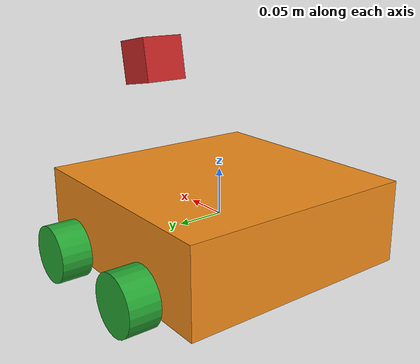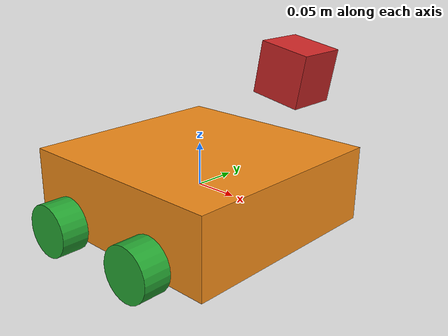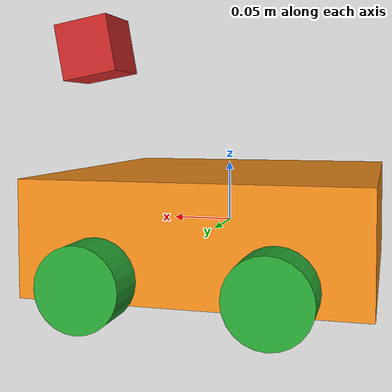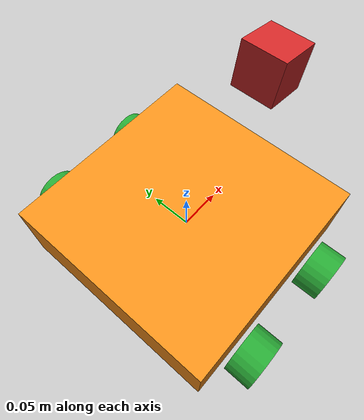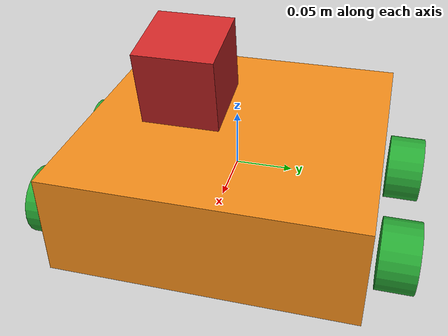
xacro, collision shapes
<?xml version='1.0'?>

<robot name="mogi_bot" xmlns:xacro="http://www.ros.org/wiki/xacro">

  <!-- STEP 3 - Gazebo plugin -->
  <xacro:include filename="$(find robotrsz_project)/urdf/mecanum_robot.gazebo" />

  <!-- STEP 4 - RViz colors -->
  <xacro:include filename="$(find robotrsz_project)/urdf/materials.xacro" />

  <!-- Include wheel macros -->
  <xacro:include filename="$(find robotrsz_project)/urdf/wheel.xacro" />

  <!-- Pi -->
  <xacro:property name="M_PI" value="3.14159"/>

  <!-- Base Size -->
  <xacro:property name="base_x_size" value="0.256" />
  <xacro:property name="base_y_size" value="0.256" />
  <xacro:property name="base_z_size" value="0.088" />

  <!-- Wheel Mounting Positions -->
  <xacro:property name="wheelbase" value="0.128" />
  <xacro:property name="track" value="0.3" />
  <xacro:property name="wheel_vertical_offset" value="-0.025" />

  <!-- Wheel Properties -->
  <xacro:property name="wheel_length" value="0.0315" />
  <xacro:property name="wheel_radius" value="0.03" />

  <!-- STEP 1 - Robot chassis -->
  <link name="base_footprint"></link>

  <joint name="base_footprint_joint" type="fixed">
    <origin xyz="0 0 0" rpy="0 0 0" />
    <parent link="base_footprint"/>
    <child link="base_link" />
  </joint>

  <!-- Robot chassis -->
  <link name='base_link'>
    <pose>0 0 0.1 0 0 0</pose>

    <inertial>
      <mass value="15.0"/>
      <origin xyz="0.0 0 0" rpy="0 0 0"/>
      <inertia
          ixx="0.1" ixy="0" ixz="0"
          iyy="0.1" iyz="0"
          izz="0.1"
      />
    </inertial>

    <collision name='collision'>
      <origin xyz="0 0 0" rpy="0 0 0"/>
      <geometry>
        <box size="${base_x_size} ${base_y_size} ${base_z_size}"/>
      </geometry>
    </collision>

    <visual name='base_link_visual'>
      <origin xyz="0 0 -${base_z_size/2}" rpy="0 0 ${M_PI/2}"/>
      <geometry>
        <!-- box size="${base_x_size} ${base_y_size} ${base_z_size}" /-->
        <mesh filename = "package://robotrsz_project/meshes/mecanum_frame.dae"/>
      </geometry>
      <material name="orange"/>
    </visual>

  </link>

  <!-- STEP 2 - Wheels -->
  <joint type="continuous" name="front_left_wheel_joint">
    <origin xyz="${wheelbase/2} ${track/2} ${wheel_vertical_offset}" rpy="0 0 0"/>
    <child link="front_left_wheel"/>
    <parent link="base_link"/>
    <axis xyz="0 1 0" rpy="0 0 0"/>
    <limit effort="10000" velocity="1000"/>
    <dynamics damping="1.0" friction="1.0"/>

  </joint>

  <link name='front_left_wheel'>
    <inertial>
      <mass value="0.5"/>
      <origin xyz="0 0 0" rpy="0 1.5707 1.5707"/>
      <inertia
          ixx="0.001354166" ixy="0" ixz="0"
          iyy="0.001354166" iyz="0"
          izz="0.0025"
      />
    </inertial>

    <collision name='collision'>
      <origin xyz="0 0 0" rpy="0 1.5707 1.5707"/>
      <geometry>
        <cylinder radius="${wheel_radius}" length="${wheel_length}"/>
      </geometry>
    </collision>

    <visual name='front_left_wheel_visual'>
      <origin xyz="0 0 0" rpy="0 1.5707 1.5707"/>
      <geometry>
        <!--cylinder radius=".1" length=".05"/-->
        <mesh filename = "package://robotrsz_project/meshes/mecanum_wheel.dae"/>
      </geometry>
      <material name="green"/>
    </visual>
  </link>

  <joint type="continuous" name="front_right_wheel_joint">
    <origin xyz="${wheelbase/2} -${track/2} ${wheel_vertical_offset}" rpy="0 0 0"/>
    <child link="front_right_wheel"/>
    <parent link="base_link"/>
    <axis xyz="0 1 0" rpy="0 0 0"/>
    <limit effort="10000" velocity="1000"/>
    <dynamics damping="1.0" friction="1.0"/>
  </joint>

  <link name='front_right_wheel'>
    <inertial>
      <mass value="0.5"/>
      <origin xyz="0 0 0" rpy="0 1.5707 1.5707"/>
      <inertia
          ixx="0.001354166" ixy="0" ixz="0"
          iyy="0.001354166" iyz="0"
          izz="0.0025"
      />
    </inertial>

    <collision name='collision'>
      <origin xyz="0 0 0" rpy="0 1.5707 1.5707"/>
      <geometry>
        <cylinder radius="${wheel_radius}" length="${wheel_length}"/>
      </geometry>
    </collision>

    <visual name='front_right_wheel_visual'>
      <origin xyz="0 0 0" rpy="0 1.5707 1.5707"/>
      <geometry>
        <!--cylinder radius=".1" length=".05"/-->
        <mesh filename = "package://robotrsz_project/meshes/mecanum_wheel.dae"/>
      </geometry>
      <material name="green"/>
    </visual>
  </link>

  <joint type="continuous" name="rear_left_wheel_joint">
    <origin xyz="-${wheelbase/2} ${track/2} ${wheel_vertical_offset}" rpy="0 0 0"/>
    <child link="rear_left_wheel"/>
    <parent link="base_link"/>
    <axis xyz="0 1 0" rpy="0 0 0"/>
    <limit effort="10000" velocity="1000"/>
    <dynamics damping="1.0" friction="1.0"/>
  </joint>

  <link name='rear_left_wheel'>
    <inertial>
      <mass value="0.5"/>
      <origin xyz="0 0 0" rpy="0 1.5707 1.5707"/>
      <inertia
          ixx="0.001354166" ixy="0" ixz="0"
          iyy="0.001354166" iyz="0"
          izz="0.0025"
      />
    </inertial>

    <collision name='collision'>
      <origin xyz="0 0 0" rpy="0 1.5707 1.5707"/>
      <geometry>
        <cylinder radius="${wheel_radius}" length="${wheel_length}"/>
      </geometry>
    </collision>

    <visual name='rear_left_wheel_visual'>
      <origin xyz="0 0 0" rpy="0 1.5707 1.5707"/>
      <geometry>
        <!--cylinder radius=".1" length=".05"/-->
        <mesh filename = "package://robotrsz_project/meshes/mecanum_wheel.dae"/>
      </geometry>
      <material name="green"/>
    </visual>
  </link>

  <joint type="continuous" name="rear_right_wheel_joint">
    <origin xyz="-${wheelbase/2} -${track/2} ${wheel_vertical_offset}" rpy="0 0 0"/>
    <child link="rear_right_wheel"/>
    <parent link="base_link"/>
    <axis xyz="0 1 0" rpy="0 0 0"/>
    <limit effort="10000" velocity="1000"/>
    <dynamics damping="1.0" friction="1.0"/>
  </joint>

  <link name='rear_right_wheel'>
    <inertial>
      <mass value="0.5"/>
      <origin xyz="0 0 0" rpy="0 1.5707 1.5707"/>
      <inertia
          ixx="0.001354166" ixy="0" ixz="0"
          iyy="0.001354166" iyz="0"
          izz="0.0025"
      />
    </inertial>

    <collision name='collision'>
      <origin xyz="0 0 0" rpy="0 1.5707 1.5707"/>
      <geometry>
        <cylinder radius="${wheel_radius}" length="${wheel_length}"/>
      </geometry>
    </collision>

    <visual name='rear_right_wheel_visual'>
      <origin xyz="0 0 0" rpy="0 1.5707 1.5707"/>
      <geometry>
        <!--cylinder radius=".1" length=".05"/-->
        <mesh filename = "package://robotrsz_project/meshes/mecanum_wheel.dae"/>
      </geometry>
      <material name="green"/>
    </visual>
  </link>

  <!-- STEP 4 - Gazebo physics -->
  <gazebo reference="front_left_wheel">
    <!-- kp and kd for rubber -->
    <kp>1000000.0</kp>
    <kd>100.0</kd>
    <mu1>1.5</mu1>
    <mu2>1.5</mu2>
    <fdir1>1 0 0</fdir1>
    <maxVel>1.0</maxVel>
    <minDepth>0.00</minDepth>
  </gazebo>

  <gazebo reference="front_right_wheel">
    <!-- kp and kd for rubber -->
    <kp>1000000.0</kp>
    <kd>100.0</kd>
    <mu1>1.5</mu1>
    <mu2>1.5</mu2>
    <fdir1>1 0 0</fdir1>
    <maxVel>1.0</maxVel>
    <minDepth>0.00</minDepth>
  </gazebo>

  <gazebo reference="rear_left_wheel">
    <!-- kp and kd for rubber -->
    <kp>1000000.0</kp>
    <kd>100.0</kd>
    <mu1>1.5</mu1>
    <mu2>1.5</mu2>
    <fdir1>1 0 0</fdir1>
    <maxVel>1.0</maxVel>
    <minDepth>0.00</minDepth>
  </gazebo>

  <gazebo reference="rear_right_wheel">
    <!-- kp and kd for rubber -->
    <kp>1000000.0</kp>
    <kd>100.0</kd>
    <mu1>1.5</mu1>
    <mu2>1.5</mu2>
    <fdir1>1 0 0</fdir1>
    <maxVel>1.0</maxVel>
    <minDepth>0.00</minDepth>
  </gazebo>

  <!-- Camera -->
  <joint type="fixed" name="camera_joint">
    <origin xyz="0.125 0 0.15" rpy="0 ${M_PI/18} 0"/>
    <child link="camera_link"/>
    <parent link="base_link"/>
    <axis xyz="0 1 0" />
  </joint>

  <link name='camera_link'>
    <pose>0 0 0 0 0 0</pose>
    <inertial>
      <mass value="0.1"/>
      <origin xyz="0 0 0" rpy="0 0 0"/>
      <inertia
          ixx="1e-6" ixy="0" ixz="0"
          iyy="1e-6" iyz="0"
          izz="1e-6"
      />
    </inertial>

    <collision name='collision'>
      <origin xyz="0 0 0" rpy="0 0 0"/>
      <geometry>
        <box size=".05 .05 .05"/>
      </geometry>
    </collision>

    <visual name='camera_link_visual'>
      <origin xyz="0 0 0" rpy="0 0 0"/>
      <geometry>
        <box size=".05 .05 .05"/>
      </geometry>
    </visual>

  </link>

  <gazebo reference="camera_link">
    <material>Gazebo/Red</material>
  </gazebo>

    <joint type="fixed" name="camera_optical_joint">
    <origin xyz="0 0 0" rpy="-1.5707 0 -1.5707"/>
    <child link="camera_link_optical"/>
    <parent link="camera_link"/>
  </joint>

  <link name="camera_link_optical">
  </link>

  <!-- STEP 4 - Gazebo colors -->

</robot>
